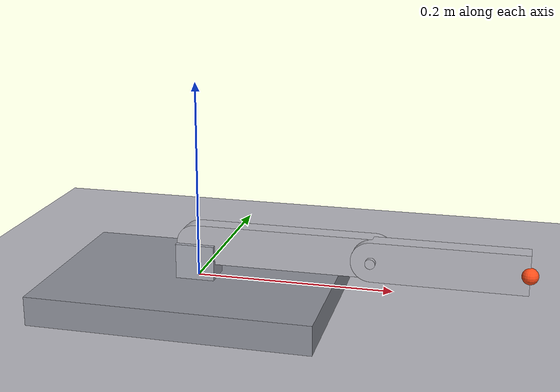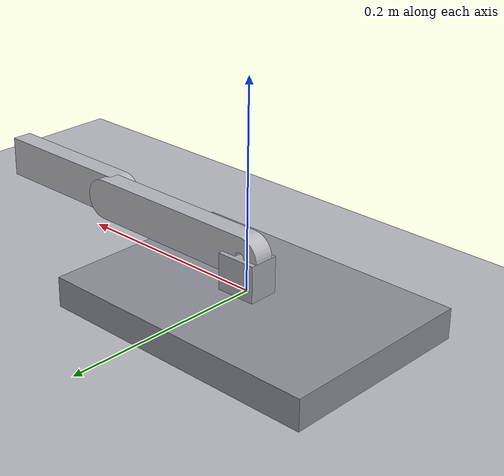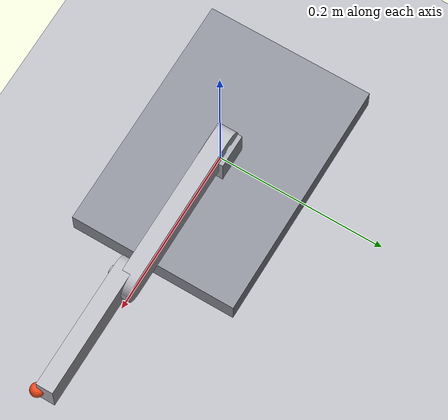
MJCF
<mujoco model="arm_2dof">

  <compiler angle="degree" meshdir="meshes" autolimits="true"/>

  <option gravity="0 0 -9.81" timestep="0.002" integrator="implicitfast"/>

  <default>
    <geom type="mesh" contype="1" conaffinity="1" condim="3"
          rgba="0.72 0.72 0.75 1" friction="0.6 0.005 0.0001"/>
    <joint type="hinge" axis="0 1 0" limited="true"
           damping="1.0" armature="0.01"/>
    <position kp="30" kv="3" forcerange="-50 50"/>
  </default>

  <asset>

    <mesh name="arm1_mesh"    file="arm1.stl"    scale="0.001 0.001 0.001"/>
    <mesh name="arm2_mesh"    file="arm2.stl"    scale="0.001 0.001 0.001"/>

    <texture name="grid" type="2d" builtin="checker" width="512" height="512"
             rgb1="0.2 0.22 0.25" rgb2="0.28 0.30 0.33"/>
    <material name="grid_mat" texture="grid" texrepeat="8 8" reflectance="0.1"/>
  </asset>

  <worldbody>

    <light name="top"  pos="0 0 2.5"      dir="0 0 -1"   diffuse="0.8 0.8 0.8"/>
    <light name="side" pos="1.5 -1.5 1.5" dir="-1 1 -1"  diffuse="0.4 0.4 0.4"/>

    <geom name="floor" type="plane" pos="0 0 -0.030" size="2 2 0.1"
          material="grid_mat" contype="1" conaffinity="1"/>

    <body name="base" pos="0 0 0">
      <geom name="slab_geom" type="box"
            size="0.14420 0.100 0.015" pos="-0.00416 0 -0.015"
            mass="1.55952" rgba="0.55 0.56 0.60 1"/>
      <geom name="bracket_geom" type="box"
            size="0.020 0.015 0.018" pos="0 0 0.018"
            mass="0.04235" rgba="0.65 0.66 0.70 1"
            contype="0" conaffinity="0"/>

      <body name="arm1" pos="0 0 0.03607">
        <joint name="joint1" range="-173.9 6.5"/>
        <geom name="arm1_geom" mesh="arm1_mesh"
              euler="0 -90 0"
              pos="-0.19512 0 0.06199"
              mass="0.16913"/>

        <body name="arm2" pos="0.180 -0.020 0">
          <joint name="joint2" range="0 170"/>
          <geom name="arm2_geom" mesh="arm2_mesh"
                euler="0 -90 0"
                pos="0 0.010 0"
                mass="0.13139"/>
          <site name="tip" pos="0.150 0 0" size="0.008" rgba="1 0.3 0.1 1"/>
        </body>
      </body>
    </body>
  </worldbody>

  <contact>
    <pair geom1="arm1_geom" geom2="slab_geom"    condim="3"/>
    <pair geom1="arm2_geom" geom2="slab_geom"    condim="3"/>
  </contact>

  <actuator>
    <position name="act1" joint="joint1" ctrlrange="-3.03514 0.11345" kp="30"/>
    <position name="act2" joint="joint2" ctrlrange="0 2.96706"     kp="20"/>
  </actuator>

  <keyframe>
    <key name="home" qpos="0 0.05236" ctrl="0 0.05236"/>
  </keyframe>

  <sensor>
    <jointpos name="j1_pos" joint="joint1"/>
    <jointpos name="j2_pos" joint="joint2"/>
  </sensor>

</mujoco>
